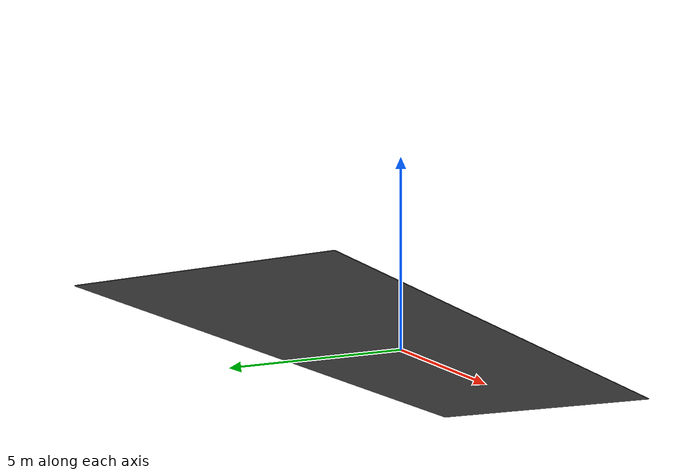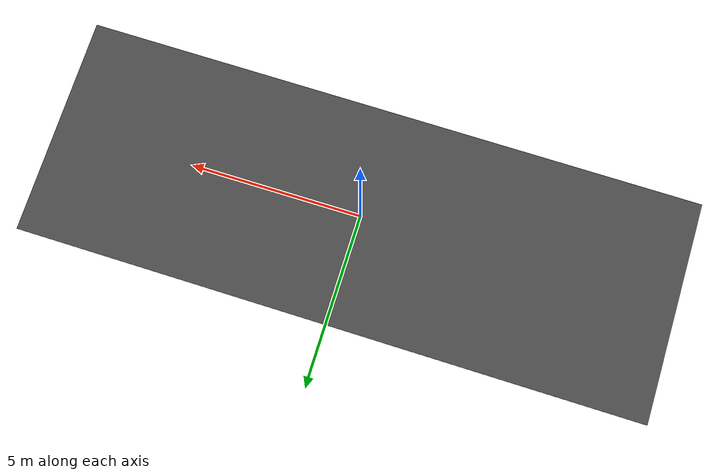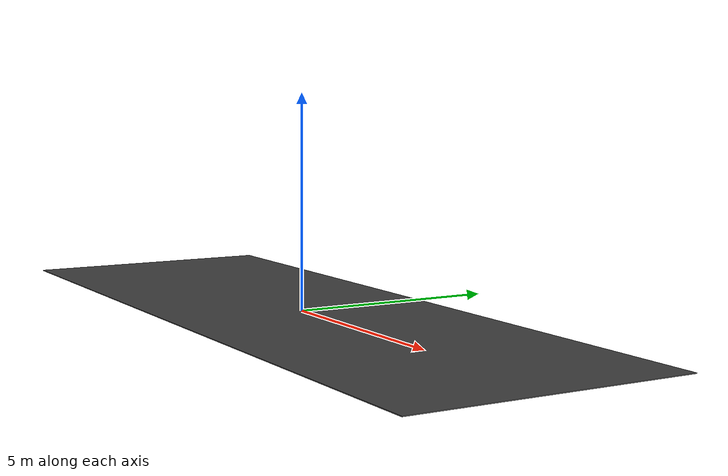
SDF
<?xml version='1.0'?>
<sdf version='1.6'>
  <model name='Road'>
    <static>1</static>
    <link name='link_0'>
      <inertial>
        <mass>3902.93</mass>
        <inertia>
          <ixx>13288.4</ixx>
          <ixy>0</ixy>
          <ixz>0</ixz>
          <iyy>107351</iyy>
          <iyz>0</iyz>
          <izz>120639</izz>
        </inertia>
        <pose frame=''>0 0 0 0 -0 0</pose>
      </inertial>
      <pose frame=''>-0 0 0 0 -0 0</pose>
      <gravity>0</gravity>
      <self_collide>1</self_collide>
      <kinematic>0</kinematic>
      <enable_wind>0</enable_wind>
      <visual name='visual'>
        <pose frame=''>0 0 0 0 -0 0</pose>
        <geometry>
          <box>
            <size>18.1676 6.39189 0.01701</size>
          </box>
        </geometry>
        <material>
          <lighting>1</lighting>
          <script>
            <uri>file://media/materials/scripts/gazebo.material</uri>
            <name>Gazebo/Road</name>
          </script>
          <shader type='pixel'>
            <normal_map>__default__</normal_map>
          </shader>
          <ambient>0.1 0.1 0.1 1</ambient>
          <diffuse>0.8 0.8 0.8 1</diffuse>
          <specular>0.01 0.01 0.01 1</specular>
          <emissive>0 0 0 1</emissive>
        </material>
        <transparency>0</transparency>
        <cast_shadows>1</cast_shadows>
      </visual>
      <collision name='collision'>
        <laser_retro>0</laser_retro>
        <max_contacts>10</max_contacts>
        <pose frame=''>0 0 0 0 -0 0</pose>
        <geometry>
          <box>
            <size>18.1676 6.39189 0.01701</size>
          </box>
        </geometry>
        <surface>
          <friction>
            <ode>
              <mu>1</mu>
              <mu2>1</mu2>
              <fdir1>0 0 0</fdir1>
              <slip1>0</slip1>
              <slip2>0</slip2>
            </ode>
            <torsional>
              <coefficient>1</coefficient>
              <patch_radius>0</patch_radius>
              <surface_radius>0</surface_radius>
              <use_patch_radius>1</use_patch_radius>
              <ode>
                <slip>0</slip>
              </ode>
            </torsional>
          </friction>
          <bounce>
            <restitution_coefficient>0</restitution_coefficient>
            <threshold>1e+06</threshold>
          </bounce>
          <contact>
            <collide_without_contact>0</collide_without_contact>
            <collide_without_contact_bitmask>1</collide_without_contact_bitmask>
            <collide_bitmask>1</collide_bitmask>
            <ode>
              <soft_cfm>0</soft_cfm>
              <soft_erp>0.2</soft_erp>
              <kp>1e+13</kp>
              <kd>1</kd>
              <max_vel>0.01</max_vel>
              <min_depth>0</min_depth>
            </ode>
            <bullet>
              <split_impulse>1</split_impulse>
              <split_impulse_penetration_threshold>-0.01</split_impulse_penetration_threshold>
              <soft_cfm>0</soft_cfm>
              <soft_erp>0.2</soft_erp>
              <kp>1e+13</kp>
              <kd>1</kd>
            </bullet>
          </contact>
        </surface>
      </collision>
    </link>
    <static>0</static>
    <allow_auto_disable>1</allow_auto_disable>
  </model>
</sdf>
